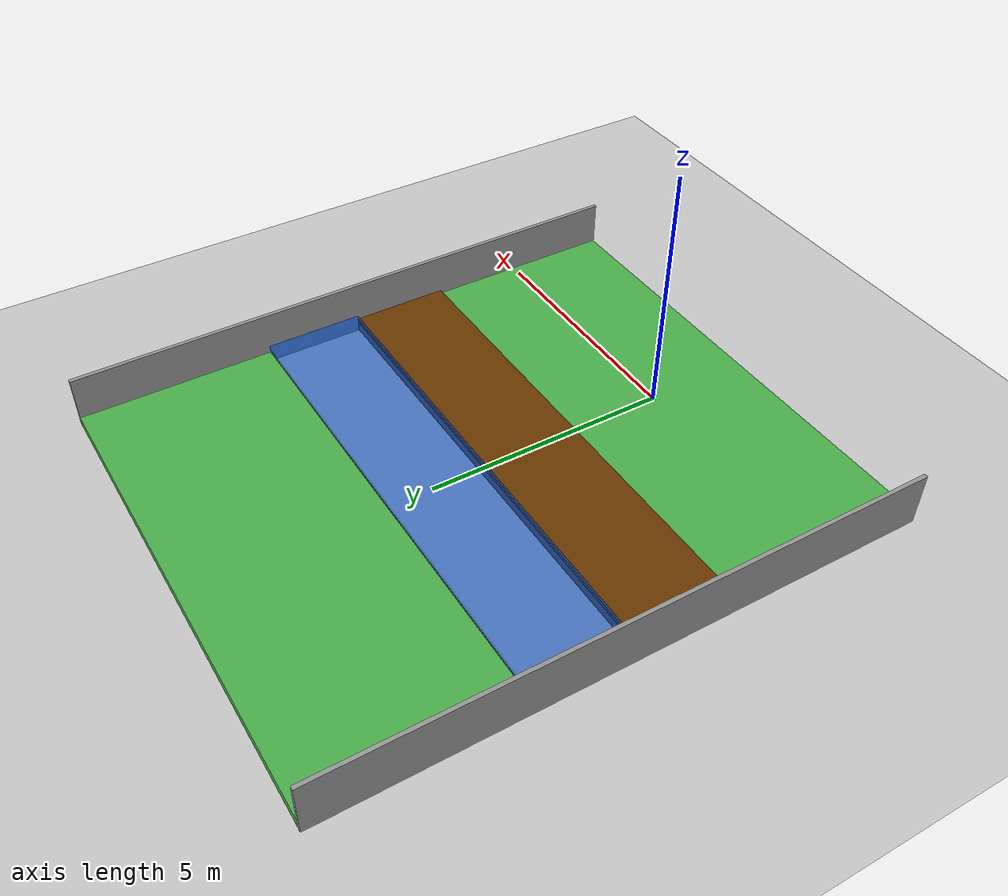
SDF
<?xml version="1.0" ?>
<sdf version="1.4">
  <!-- We use a custom world for the rrbot so that the camera angle is launched correctly -->

  <world name="default">
    <include>
      <uri>model://ground_plane</uri>
    </include>

    <!-- Global light source -->
    <include>
      <uri>model://sun</uri>
    </include>

    <!-- Focus camera on tall pendulum -->
    <gui fullscreen='0'>
      <camera name='user_camera'>
        <pose>4.927360 -4.376610 3.740080 0.000000 0.275643 2.356190</pose>
        <view_controller>orbit</view_controller>
      </camera>
    </gui>
	  <model name='Untitled_0_1_0'>
	    <link name='link_0_0'>
	      <pose frame=''>0.0 0.012680 0.1 0 -0 0</pose>
	      <inertial>
		<mass>100</mass>
		<inertia>
		  <ixx>1</ixx>
		  <ixy>0</ixy>
		  <ixz>0</ixz>
		  <iyy>1</iyy>
		  <iyz>0</iyz>
		  <izz>1</izz>
		</inertia>
		<pose frame=''>0 0 0 0 -0 0</pose>
	      </inertial>
	      <self_collide>0</self_collide>
	      <kinematic>0</kinematic>
	      <gravity>1</gravity>
	      <visual name='visual'>
		<pose frame=''>0 0 0 0 -0 0</pose>
		<geometry>
		  <box>
		    <size>10 4 0.2</size>
		  </box>
		</geometry>
		<material>
		  <lighting>1</lighting>
		  <script>
		    <uri>file://media/materials/scripts/gazebo.material</uri>
		    <name>Gazebo/Grey</name>
		  </script>
		  <ambient>0.3 0.7 0.3 1</ambient>
		  <diffuse>0.3 0.7 0.3 1</diffuse>
		  <specular>0.01 0.01 0.01 1</specular>
		  <emissive>0 0 0 1</emissive>
		  <shader type='vertex'>
		    <normal_map>__default__</normal_map>
		  </shader>
		</material>
		<cast_shadows>1</cast_shadows>
		<transparency>0</transparency>
	      </visual>
	      <collision name='collision'>
		<laser_retro>0</laser_retro>
		<max_contacts>10</max_contacts>
		<pose frame=''>0 0 0 0 -0 0</pose>
		<geometry>
		  <box>
		    <size>10 4 0.2</size>
		  </box>
		</geometry>
		<surface>
		  <friction>
		    <ode>
		      <mu>100</mu>
		      <mu2>50</mu2>
		      <fdir1>0 0 0</fdir1>
		      <slip1>0</slip1>
		      <slip2>0</slip2>
		    </ode>
		    <torsional>
		      <coefficient>1</coefficient>
		      <patch_radius>0</patch_radius>
		      <surface_radius>0</surface_radius>
		      <use_patch_radius>1</use_patch_radius>
		      <ode>
		        <slip>0</slip>
		      </ode>
		    </torsional>
		  </friction>
		  <bounce>
		    <restitution_coefficient>0</restitution_coefficient>
		    <threshold>1e+06</threshold>
		  </bounce>
		  <contact>
		    <collide_without_contact>0</collide_without_contact>
		    <collide_without_contact_bitmask>1</collide_without_contact_bitmask>
		    <collide_bitmask>1</collide_bitmask>
		    <ode>
		      <soft_cfm>0</soft_cfm>
		      <soft_erp>0.2</soft_erp>
		      <kp>1e+13</kp>
		      <kd>1</kd>
		      <max_vel>0.01</max_vel>
		      <min_depth>0</min_depth>
		    </ode>
		    <bullet>
		      <split_impulse>1</split_impulse>
		      <split_impulse_penetration_threshold>-0.01</split_impulse_penetration_threshold>
		      <soft_cfm>0</soft_cfm>
		      <soft_erp>0.2</soft_erp>
		      <kp>1e+13</kp>
		      <kd>1</kd>
		    </bullet>
		  </contact>
		</surface>
	      </collision>
	    </link>
	    <link name='link_0'>
	      <pose frame=''>5.039478 3.996058 0.5 0 -0 0</pose>
	      <inertial>
		<mass>0.0789609</mass>
		<inertia>
		  <ixx>0.0131602</ixx>
		  <ixy>0</ixy>
		  <ixz>0</ixz>
		  <iyy>0.00662111</iyy>
		  <iyz>0</iyz>
		  <izz>0.00662111</izz>
		</inertia>
		<pose frame=''>0 0 0 0 -0 0</pose>
	      </inertial>
	      <self_collide>0</self_collide>
	      <kinematic>0</kinematic>
	      <visual name='visual'>
		<pose frame=''>0 0 0 0 -0 0</pose>
		<geometry>
		  <box>
		    <size>0.078956 12 1.2</size>
		  </box>
		</geometry>
		<material>
		  <lighting>1</lighting>
		  <script>
		    <uri>file://media/materials/scripts/gazebo.material</uri>
		    <name>Gazebo/Grey</name>
		  </script>
		  <ambient>1 1 1 1</ambient>
		  <diffuse>1 1 1 1</diffuse>
		  <specular>0.01 0.01 0.01 1</specular>
		  <emissive>0 0 0 1</emissive>
		  <shader type='vertex'>
		    <normal_map>__default__</normal_map>
		  </shader>
		</material>
		<cast_shadows>1</cast_shadows>
		<transparency>0</transparency>
	      </visual>
	      <collision name='collision'>
		<laser_retro>0</laser_retro>
		<max_contacts>10</max_contacts>
		<pose frame=''>0 0 0 0 -0 0</pose>
		<geometry>
		  <box>
		    <size>0.078956 12 1.2</size>
		  </box>
		</geometry>
		<surface>
		  <friction>
		    <ode>
		      <mu>1</mu>
		      <mu2>1</mu2>
		      <fdir1>0 0 0</fdir1>
		      <slip1>0</slip1>
		      <slip2>0</slip2>
		    </ode>
		    <torsional>
		      <coefficient>1</coefficient>
		      <patch_radius>0</patch_radius>
		      <surface_radius>0</surface_radius>
		      <use_patch_radius>1</use_patch_radius>
		      <ode>
		        <slip>0</slip>
		      </ode>
		    </torsional>
		  </friction>
		  <bounce>
		    <restitution_coefficient>0</restitution_coefficient>
		    <threshold>1e+06</threshold>
		  </bounce>
		  <contact>
		    <collide_without_contact>0</collide_without_contact>
		    <collide_without_contact_bitmask>1</collide_without_contact_bitmask>
		    <collide_bitmask>1</collide_bitmask>
		    <ode>
		      <soft_cfm>0</soft_cfm>
		      <soft_erp>0.2</soft_erp>
		      <kp>1e+13</kp>
		      <kd>1</kd>
		      <max_vel>0.01</max_vel>
		      <min_depth>0</min_depth>
		    </ode>
		    <bullet>
		      <split_impulse>1</split_impulse>
		      <split_impulse_penetration_threshold>-0.01</split_impulse_penetration_threshold>
		      <soft_cfm>0</soft_cfm>
		      <soft_erp>0.2</soft_erp>
		      <kp>1e+13</kp>
		      <kd>1</kd>
		    </bullet>
		  </contact>
		</surface>
	      </collision>
	    </link>
	    <link name='link_0_0_clone'>
	      <pose frame=''>0.0 7.99654 0.1 0 -0 0</pose>
	      <inertial>
		<mass>100</mass>
		<inertia>
		  <ixx>1</ixx>
		  <ixy>0</ixy>
		  <ixz>0</ixz>
		  <iyy>1</iyy>
		  <iyz>0</iyz>
		  <izz>1</izz>
		</inertia>
		<pose frame=''>0 0 0 0 -0 0</pose>
	      </inertial>
	      <self_collide>0</self_collide>
	      <kinematic>0</kinematic>
	      <visual name='visual'>
		<pose frame=''>0 0 0 0 -0 0</pose>
		<geometry>
		  <box>
		    <size>10 4 0.2</size>
		  </box>
		</geometry>
		<material>
		  <lighting>1</lighting>
		  <script>
		    <uri>file://media/materials/scripts/gazebo.material</uri>
		    <name>Gazebo/Grey</name>
		  </script>
		  <ambient>0.3 0.7 0.3 1</ambient>
		  <diffuse>0.3 0.7 0.3 1</diffuse>
		  <specular>0.01 0.01 0.01 1</specular>
		  <emissive>0 0 0 1</emissive>
		  <shader type='vertex'>
		    <normal_map>__default__</normal_map>
		  </shader>
		</material>
		<cast_shadows>1</cast_shadows>
		<transparency>0</transparency>
	      </visual>
	      <collision name='collision'>
		<laser_retro>0</laser_retro>
		<max_contacts>10</max_contacts>
		<pose frame=''>0 0 0 0 -0 0</pose>
		<geometry>
		  <box>
		    <size>10 4 0.2</size>
		  </box>
		</geometry>
		<surface>
		  <friction>
		    <ode>
		      <mu>1</mu>
		      <mu2>1</mu2>
		      <fdir1>0 0 0</fdir1>
		      <slip1>0</slip1>
		      <slip2>0</slip2>
		    </ode>
		    <torsional>
		      <coefficient>1</coefficient>
		      <patch_radius>0</patch_radius>
		      <surface_radius>0</surface_radius>
		      <use_patch_radius>1</use_patch_radius>
		      <ode>
		        <slip>0</slip>
		      </ode>
		    </torsional>
		  </friction>
		  <bounce>
		    <restitution_coefficient>0</restitution_coefficient>
		    <threshold>1e+06</threshold>
		  </bounce>
		  <contact>
		    <collide_without_contact>0</collide_without_contact>
		    <collide_without_contact_bitmask>1</collide_without_contact_bitmask>
		    <collide_bitmask>1</collide_bitmask>
		    <ode>
		      <soft_cfm>0</soft_cfm>
		      <soft_erp>0.2</soft_erp>
		      <kp>1e+13</kp>
		      <kd>1</kd>
		      <max_vel>0.01</max_vel>
		      <min_depth>0</min_depth>
		    </ode>
		    <bullet>
		      <split_impulse>1</split_impulse>
		      <split_impulse_penetration_threshold>-0.01</split_impulse_penetration_threshold>
		      <soft_cfm>0</soft_cfm>
		      <soft_erp>0.2</soft_erp>
		      <kp>1e+13</kp>
		      <kd>1</kd>
		    </bullet>
		  </contact>
		</surface>
	      </collision>
	    </link>
	    <link name='link_0_1'>
	      <pose frame=''>0.0 3.01268 0.2367805 0 -0 0</pose>
	      <inertial>
		<mass>100</mass>
		<inertia>
		  <ixx>1</ixx>
		  <ixy>0</ixy>
		  <ixz>0</ixz>
		  <iyy>1</iyy>
		  <iyz>0</iyz>
		  <izz>1</izz>
		</inertia>
		<pose frame=''>0 0 0 0 -0 0</pose>
	      </inertial>
	      <self_collide>0</self_collide>
	      <kinematic>0</kinematic>
	      <visual name='visual'>
		<pose frame=''>0 0 0 0 -0 0</pose>
		<geometry>
		  <box>
		    <size>10 2 0.073561</size>
		  </box>
		</geometry>
		<material>
		  <lighting>1</lighting>
		  <script>
		    <uri>file://media/materials/scripts/gazebo.material</uri>
		    <name>Gazebo/Grey</name>
		  </script>
		  <ambient>0.2 0.2 0.2 1</ambient>
		  <diffuse>0.421 0.225 0 1</diffuse>
		  <specular>0.01 0.01 0.01 1</specular>
		  <emissive>0 0 0 1</emissive>
		  <shader type='vertex'>
		    <normal_map>__default__</normal_map>
		  </shader>
		</material>
		<cast_shadows>1</cast_shadows>
		<transparency>0</transparency>
	      </visual>
	      <collision name='collision'>
		<laser_retro>0</laser_retro>
		<max_contacts>10</max_contacts>
		<pose frame=''>0 0 0 0 -0 0</pose>
		<geometry>
		  <box>
		    <size>10 2 0.073561</size>
		  </box>
		</geometry>
		<surface>
		  <friction>
		    <ode>
		      <mu>5</mu>
		      <mu2>2</mu2>
		      <fdir1>0 0 0</fdir1>
		      <slip1>0</slip1>
		      <slip2>0</slip2>
		    </ode>
		    <torsional>
		      <coefficient>1</coefficient>
		      <patch_radius>0</patch_radius>
		      <surface_radius>0</surface_radius>
		      <use_patch_radius>1</use_patch_radius>
		      <ode>
		        <slip>0</slip>
		      </ode>
		    </torsional>
		  </friction>
		  <bounce>
		    <restitution_coefficient>0</restitution_coefficient>
		    <threshold>1e+06</threshold>
		  </bounce>
		  <contact>
		    <collide_without_contact>1</collide_without_contact>
		    <collide_without_contact_bitmask>1</collide_without_contact_bitmask>
		    <collide_bitmask>1</collide_bitmask>
		    <ode>
		      <soft_cfm>0</soft_cfm>
		      <soft_erp>0.2</soft_erp>
		      <kp>1e+13</kp>
		      <kd>1</kd>
		      <max_vel>0.01</max_vel>
		      <min_depth>0</min_depth>
		    </ode>
		    <bullet>
		      <split_impulse>1</split_impulse>
		      <split_impulse_penetration_threshold>-0.01</split_impulse_penetration_threshold>
		      <soft_cfm>0</soft_cfm>
		      <soft_erp>0.2</soft_erp>
		      <kp>1e+13</kp>
		      <kd>1</kd>
		    </bullet>
		  </contact>
		</surface>
	      </collision>
	      <sensor name="mud_contact" type="contact">
		  <always_on>true</always_on>
		  <update_rate>1000</update_rate>
		  <contact>
		    <collision>collision</collision>
		  </contact>
	      </sensor>
	    </link>
	    <plugin name="gazebo_mud" filename="libMudPlugin.so">
		<contact_sensor_name>link_0_1/mud_contact</contact_sensor_name>
		<stiffness>0.5</stiffness>
		<damping>1.0</damping>
	    </plugin>

	    <link name='mud_under_ground'>
	      <pose frame=''>0.0 3.01268 0.1 0 -0 0</pose>
	      <inertial>
		<mass>100</mass>
		<inertia>
		  <ixx>1</ixx>
		  <ixy>0</ixy>
		  <ixz>0</ixz>
		  <iyy>1</iyy>
		  <iyz>0</iyz>
		  <izz>1</izz>
		</inertia>
		<pose frame=''>0 0 0 0 -0 0</pose>
	      </inertial>
	      <self_collide>0</self_collide>
	      <kinematic>0</kinematic>
	      <gravity>1</gravity>
	      <visual name='visual'>
		<pose frame=''>0 0 0 0 -0 0</pose>
		<geometry>
		  <box>
		    <size>10 2 0.2</size>
		  </box>
		</geometry>
		<material>
		  <lighting>1</lighting>
		  <script>
		    <uri>file://media/materials/scripts/gazebo.material</uri>
		    <name>Gazebo/Grey</name>
		  </script>
		  <ambient>0.2 0.2 0.2 1</ambient>
		  <diffuse>0.421 0.225 0 1</diffuse>
		  <specular>0.01 0.01 0.01 1</specular>
		  <emissive>0 0 0 1</emissive>
		  <shader type='vertex'>
		    <normal_map>__default__</normal_map>
		  </shader>
		</material>
		<cast_shadows>1</cast_shadows>
		<transparency>0</transparency>
	      </visual>
	      <collision name='collision'>
		<laser_retro>0</laser_retro>
		<max_contacts>10</max_contacts>
		<pose frame=''>0 0 0 0 -0 0</pose>
		<geometry>
		  <box>
		    <size>10 2 0.2</size>
		  </box>
		</geometry>
		<surface>
		  <friction>
		    <ode>
		      <mu>100</mu>
		      <mu2>50</mu2>
		      <fdir1>0 0 0</fdir1>
		      <slip1>0</slip1>
		      <slip2>0</slip2>
		    </ode>
		    <torsional>
		      <coefficient>1</coefficient>
		      <patch_radius>0</patch_radius>
		      <surface_radius>0</surface_radius>
		      <use_patch_radius>1</use_patch_radius>
		      <ode>
		        <slip>0</slip>
		      </ode>
		    </torsional>
		  </friction>
		  <bounce>
		    <restitution_coefficient>0</restitution_coefficient>
		    <threshold>1e+06</threshold>
		  </bounce>
		  <contact>
		    <collide_without_contact>0</collide_without_contact>
		    <collide_without_contact_bitmask>1</collide_without_contact_bitmask>
		    <collide_bitmask>1</collide_bitmask>
		    <ode>
		      <soft_cfm>0</soft_cfm>
		      <soft_erp>0.2</soft_erp>
		      <kp>1e+13</kp>
		      <kd>1</kd>
		      <max_vel>0.01</max_vel>
		      <min_depth>0</min_depth>
		    </ode>
		    <bullet>
		      <split_impulse>1</split_impulse>
		      <split_impulse_penetration_threshold>-0.01</split_impulse_penetration_threshold>
		      <soft_cfm>0</soft_cfm>
		      <soft_erp>0.2</soft_erp>
		      <kp>1e+13</kp>
		      <kd>1</kd>
		    </bullet>
		  </contact>
		</surface>
	      </collision>
	    </link>

	    <link name='link_0_clone'>
	      <pose frame=''>-5.039478 3.99608 0.5 0 -0 0</pose>
	      <inertial>
		<mass>0.0789609</mass>
		<inertia>
		  <ixx>0.0131602</ixx>
		  <ixy>0</ixy>
		  <ixz>0</ixz>
		  <iyy>0.00662111</iyy>
		  <iyz>0</iyz>
		  <izz>0.00662111</izz>
		</inertia>
		<pose frame=''>0 0 0 0 -0 0</pose>
	      </inertial>
	      <self_collide>0</self_collide>
	      <kinematic>0</kinematic>
	      <visual name='visual'>
		<pose frame=''>0 0 0 0 -0 0</pose>
		<geometry>
		  <box>
		    <size>0.078956 12 1.2</size>
		  </box>
		</geometry>
		<material>
		  <lighting>1</lighting>
		  <script>
		    <uri>file://media/materials/scripts/gazebo.material</uri>
		    <name>Gazebo/Grey</name>
		  </script>
		  <ambient>1 1 1 1</ambient>
		  <diffuse>1 1 1 1</diffuse>
		  <specular>0.01 0.01 0.01 1</specular>
		  <emissive>0 0 0 1</emissive>
		  <shader type='vertex'>
		    <normal_map>__default__</normal_map>
		  </shader>
		</material>
		<cast_shadows>1</cast_shadows>
		<transparency>0</transparency>
	      </visual>
	      <collision name='collision'>
		<laser_retro>0</laser_retro>
		<max_contacts>10</max_contacts>
		<pose frame=''>0 0 0 0 -0 0</pose>
		<geometry>
		  <box>
		    <size>0.078956 12 1.2</size>
		  </box>
		</geometry>
		<surface>
		  <friction>
		    <ode>
		      <mu>1</mu>
		      <mu2>1</mu2>
		      <fdir1>0 0 0</fdir1>
		      <slip1>0</slip1>
		      <slip2>0</slip2>
		    </ode>
		    <torsional>
		      <coefficient>1</coefficient>
		      <patch_radius>0</patch_radius>
		      <surface_radius>0</surface_radius>
		      <use_patch_radius>1</use_patch_radius>
		      <ode>
		        <slip>0</slip>
		      </ode>
		    </torsional>
		  </friction>
		  <bounce>
		    <restitution_coefficient>0</restitution_coefficient>
		    <threshold>1e+06</threshold>
		  </bounce>
		  <contact>
		    <collide_without_contact>0</collide_without_contact>
		    <collide_without_contact_bitmask>1</collide_without_contact_bitmask>
		    <collide_bitmask>1</collide_bitmask>
		    <ode>
		      <soft_cfm>0</soft_cfm>
		      <soft_erp>0.2</soft_erp>
		      <kp>1e+13</kp>
		      <kd>1</kd>
		      <max_vel>0.01</max_vel>
		      <min_depth>0</min_depth>
		    </ode>
		    <bullet>
		      <split_impulse>1</split_impulse>
		      <split_impulse_penetration_threshold>-0.01</split_impulse_penetration_threshold>
		      <soft_cfm>0</soft_cfm>
		      <soft_erp>0.2</soft_erp>
		      <kp>1e+13</kp>
		      <kd>1</kd>
		    </bullet>
		  </contact>
		</surface>
	      </collision>
	    </link>
	    <link name='link_1'>
	      <pose frame=''>0.0 5.01344 0.275 0 -0 0</pose>
	      <inertial>
		<mass>100</mass>
		<inertia>
		  <ixx>1</ixx>
		  <ixy>0</ixy>
		  <ixz>0</ixz>
		  <iyy>1</iyy>
		  <iyz>0</iyz>
		  <izz>1</izz>
		</inertia>
		<pose frame=''>0 0 0 0 -0 0</pose>
	      </inertial>
	      <self_collide>0</self_collide>
	      <kinematic>0</kinematic>
	      <visual name='visual'>
		<pose frame=''>0 0 0 0 -0 0</pose>
		<geometry>
		  <box>
		    <size>10 2 0.15</size>
		  </box>
		</geometry>
		<material>
		  <lighting>1</lighting>
		  <script>
		    <uri>file://media/materials/scripts/gazebo.material</uri>
		    <name>Gazebo/Grey</name>
		  </script>
		  <ambient>0 0.3 1 1</ambient>
		  <diffuse>0 0.3 0.8 1</diffuse>
		  <specular>0.01 0.01 0.01 1</specular>
		  <emissive>0 0 0 1</emissive>
		  <shader type='vertex'>
		    <normal_map>__default__</normal_map>
		  </shader>
		</material>
		<cast_shadows>1</cast_shadows>
		<transparency>0.4</transparency>
	      </visual>
	      <collision name='collision'>
		<laser_retro>0</laser_retro>
		<max_contacts>10</max_contacts>
		<pose frame=''>0 0 0 0 -0 0</pose>
		<geometry>
		  <box>
		    <size>10 2 0.15</size>
		  </box>
		</geometry>
		<surface>
		  <friction>
		    <ode>
		      <mu>0.0</mu>
		      <mu2>0.0</mu2>
		      <fdir1>0 0 0</fdir1>
		      <slip1>0</slip1>
		      <slip2>0</slip2>
		    </ode>
		    <torsional>
		      <coefficient>1</coefficient>
		      <patch_radius>0</patch_radius>
		      <surface_radius>0</surface_radius>
		      <use_patch_radius>1</use_patch_radius>
		      <ode>
		        <slip>0</slip>
		      </ode>
		    </torsional>
		  </friction>
		  <bounce>
		    <restitution_coefficient>0</restitution_coefficient>
		    <threshold>1e+06</threshold>
		  </bounce>
		  <contact>
		    <collide_without_contact>1</collide_without_contact>
		    <collide_without_contact_bitmask>1</collide_without_contact_bitmask>
		    <collide_bitmask>1</collide_bitmask>
		    <ode>
		      <soft_cfm>0</soft_cfm>
		      <soft_erp>0.2</soft_erp>
		      <kp>1e+13</kp>
		      <kd>1</kd>
		      <max_vel>0.01</max_vel>
		      <min_depth>0</min_depth>
		    </ode>
		    <bullet>
		      <split_impulse>1</split_impulse>
		      <split_impulse_penetration_threshold>-0.01</split_impulse_penetration_threshold>
		      <soft_cfm>0</soft_cfm>
		      <soft_erp>0.2</soft_erp>
		      <kp>1e+13</kp>
		      <kd>1</kd>
		    </bullet>
		  </contact>
		</surface>
	      </collision>
	    </link>

    <!-- buoyancy plugin -->
            <plugin name="freefloating_gazebo_fluid" filename="libfreefloating_gazebo_fluid.so">
              <descriptionParam>rrobot_description</descriptionParam>
              <fluidTopic>current</fluidTopic>
              <alwaysOn>true</alwaysOn>
              <surface>0 0 0</surface>
              <updateRate>.001</updateRate>
            </plugin>

	    <link name='water_under_ground'>
	      <pose frame=''>0.0 5.01344 0.1 0 -0 0</pose>
	      <inertial>
		<mass>100</mass>
		<inertia>
		  <ixx>1</ixx>
		  <ixy>0</ixy>
		  <ixz>0</ixz>
		  <iyy>1</iyy>
		  <iyz>0</iyz>
		  <izz>1</izz>
		</inertia>
		<pose frame=''>0 0 0 0 -0 0</pose>
	      </inertial>
	      <self_collide>0</self_collide>
	      <kinematic>0</kinematic>
	      <gravity>1</gravity>
	      <visual name='visual'>
		<pose frame=''>0 0 0 0 -0 0</pose>
		<geometry>
		  <box>
		    <size>10 2 0.2</size>
		  </box>
		</geometry>
		<material>
		  <lighting>1</lighting>
		  <script>
		    <uri>file://media/materials/scripts/gazebo.material</uri>
		    <name>Gazebo/Grey</name>
		  </script>
		  <ambient>0 0.3 1 1</ambient>
		  <diffuse>0 0.3 0.8 1</diffuse>
		  <specular>0.01 0.01 0.01 1</specular>
		  <emissive>0 0 0 1</emissive>
		  <shader type='vertex'>
		    <normal_map>__default__</normal_map>
		  </shader>
		</material>
		<cast_shadows>1</cast_shadows>
		<transparency>0.4</transparency>
	      </visual>
	      <collision name='collision'>
		<laser_retro>0</laser_retro>
		<max_contacts>10</max_contacts>
		<pose frame=''>0 0 0 0 -0 0</pose>
		<geometry>
		  <box>
		    <size>10 2 0.2</size>
		  </box>
		</geometry>
		<surface>
		  <friction>
		    <ode>
		      <mu>10.0</mu>
		      <mu2>5.0</mu2>
		      <fdir1>0 0 0</fdir1>
		      <slip1>0</slip1>
		      <slip2>0</slip2>
		    </ode>
		    <torsional>
		      <coefficient>1</coefficient>
		      <patch_radius>0</patch_radius>
		      <surface_radius>0</surface_radius>
		      <use_patch_radius>1</use_patch_radius>
		      <ode>
		        <slip>0</slip>
		      </ode>
		    </torsional>
		  </friction>
		  <bounce>
		    <restitution_coefficient>0</restitution_coefficient>
		    <threshold>1e+06</threshold>
		  </bounce>
		  <contact>
		    <collide_without_contact>0</collide_without_contact>
		    <collide_without_contact_bitmask>1</collide_without_contact_bitmask>
		    <collide_bitmask>1</collide_bitmask>
		    <ode>
		      <soft_cfm>0</soft_cfm>
		      <soft_erp>0.2</soft_erp>
		      <kp>1e+13</kp>
		      <kd>1</kd>
		      <max_vel>0.01</max_vel>
		      <min_depth>0</min_depth>
		    </ode>
		    <bullet>
		      <split_impulse>1</split_impulse>
		      <split_impulse_penetration_threshold>-0.01</split_impulse_penetration_threshold>
		      <soft_cfm>0</soft_cfm>
		      <soft_erp>0.2</soft_erp>
		      <kp>1e+13</kp>
		      <kd>1</kd>
		    </bullet>
		  </contact>
		</surface>
	      </collision>
	    </link>
	    <static>1</static>
	    <allow_auto_disable>1</allow_auto_disable>
	  </model>
  </world>
</sdf>
